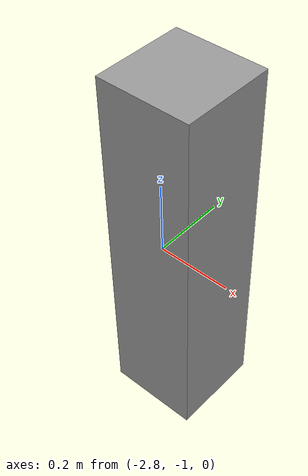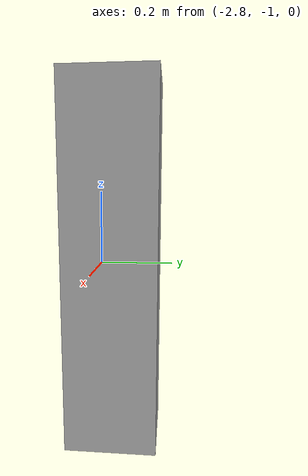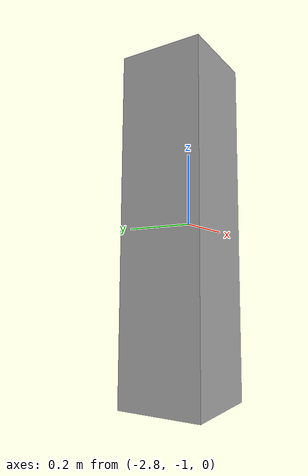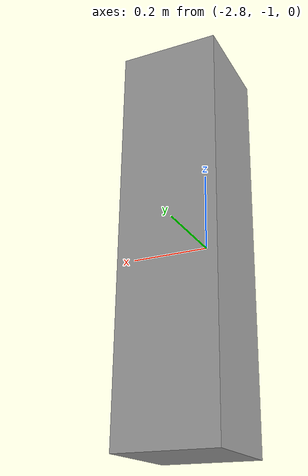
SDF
<?xml version='1.0'?>
<sdf version='1.6'>
  <model name='obstacle3'>
      <pose>-2.77 -0.96 0 0 0 0</pose>
      <static>true</static>
      <link name='link'>
        <inertial>
          <mass>1</mass>
          <inertia>
            <ixx>0.166667</ixx>
            <ixy>0</ixy>
            <ixz>0</ixz>
            <iyy>0.166667</iyy>
            <iyz>0</iyz>
            <izz>0.166667</izz>
          </inertia>
          <pose>0 0 0 0 -0 0</pose>
        </inertial>
        <collision name='collision'>
          <geometry>
            <box>
              <size>0.25 0.25 1</size>
            </box>
          </geometry>
          <max_contacts>10</max_contacts>
          <surface>
            <contact>
              <ode/>
            </contact>
            <bounce/>
            <friction>
              <torsional>
                <ode/>
              </torsional>
              <ode/>
            </friction>
          </surface>
        </collision>
        <visual name='visual'>
          <geometry>
            <box>
              <size>0.25 0.25 1</size>
            </box>
          </geometry>
          <material>
            <script>
              <name>Gazebo/Grey</name>
              <uri>file://media/materials/scripts/gazebo.material</uri>
            </script>
          </material>
        </visual>
        <self_collide>0</self_collide>
        <enable_wind>0</enable_wind>
        <kinematic>0</kinematic>
      </link>
    </model>
</sdf>
